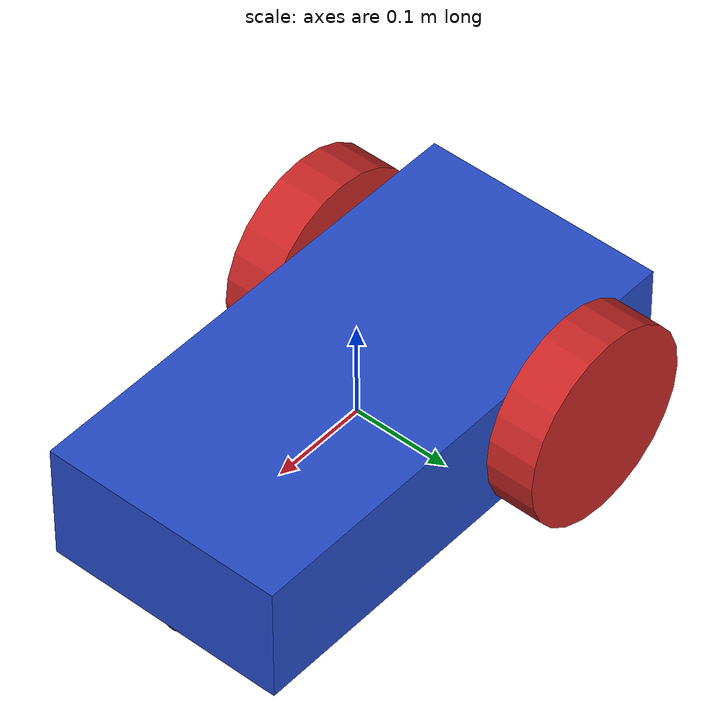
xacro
<?xml version="1.0" encoding="utf-8"?>
<robot name="ddr" xmlns:xacro="http://www.ros.org/wiki/xacro">

  <xacro:property name="chassis_length" value="0.5"/>
  <xacro:property name="chassis_width"  value="0.25"/>
  <xacro:property name="chassis_height" value="0.125"/>
  <xacro:property name="chassis_mass"   value="1.14395"/>

  <xacro:property name="wheel_radius"     value="0.1"/>
  <xacro:property name="wheel_length"     value="0.05"/>
  <xacro:property name="wheel_mass"       value="1.0"/>
  <xacro:property name="wheel_x_offset"   value="-0.125"/>
  <xacro:property name="wheel_y_offset"   value="0.15"/>

  <xacro:property name="caster_radius" value="0.05"/>
  <xacro:property name="caster_mass"   value="0.05"/>
  <xacro:property name="caster_x" value="0.2"/>
  <xacro:property name="caster_z" value="-0.05"/>

  <!-- base_link (chassis) -->

  <link name="base_link">
    <visual>
      <geometry>
        <box size="${chassis_length} ${chassis_width} ${chassis_height}"/>
      </geometry>
      <material name="blue"/>
    </visual>
    <collision>
      <geometry>
        <box size="${chassis_length} ${chassis_width} ${chassis_height}"/>
      </geometry>
    </collision>
    <inertial>
      <mass value="${chassis_mass}"/>
      <inertia ixx="0.005958" ixy="0" ixz="0"
               iyy="0.023832" iyz="0"
               izz="0.029790"/>
    </inertial>
  </link>

  <!-- Ruote motrici (differential drive) -->
  <xacro:macro name="wheel" params="prefix y_offset">
    <link name="${prefix}_wheel">
      <visual>
        <origin xyz="0 0 0" rpy="1.5707963 0 0"/>
        <geometry>
          <cylinder radius="${wheel_radius}" length="${wheel_length}"/>
        </geometry>
        <material name="red"/>
      </visual>
      <collision>
        <origin xyz="0 0 0" rpy="1.5707963 0 0"/>
        <geometry>
          <cylinder radius="${wheel_radius}" length="${wheel_length}"/>
        </geometry>
      </collision>
      <inertial>
        <mass value="${wheel_mass}"/>
        <inertia ixx="0.002708" ixy="0" ixz="0"
                 iyy="0.002708" iyz="0"
                 izz="0.005"/>
      </inertial>
    </link>

    <joint name="${prefix}_wheel_joint" type="continuous">
      <parent link="base_link"/>
      <child link="${prefix}_wheel"/>
      <origin xyz="${wheel_x_offset} ${y_offset} 0" rpy="0 0 0"/>
      <axis xyz="0 1 0"/>
    </joint>
  </xacro:macro>

  <xacro:wheel prefix="left"  y_offset="${wheel_y_offset}"/>
  <xacro:wheel prefix="right" y_offset="-${wheel_y_offset}"/>

  <!-- Caster wheel (ruota folle di appoggio) -->

  <link name="caster">
    <visual>
      <geometry>
        <sphere radius="${caster_radius}"/>
      </geometry>
      <material name="red"/>
    </visual>
    <collision>
      <geometry>
        <sphere radius="${caster_radius}"/>
      </geometry>
    </collision>
    <inertial>
      <mass value="${caster_mass}"/>
      <inertia ixx="0.001" ixy="0" ixz="0"
               iyy="0.001" iyz="0"
               izz="0.001"/>
    </inertial>
  </link>

  <joint name="caster_wheel_joint" type="fixed">
    <parent link="base_link"/>
    <child link="caster"/>
    <origin xyz="${caster_x} 0 ${caster_z}" rpy="0 0 0"/>
  </joint>

</robot>
